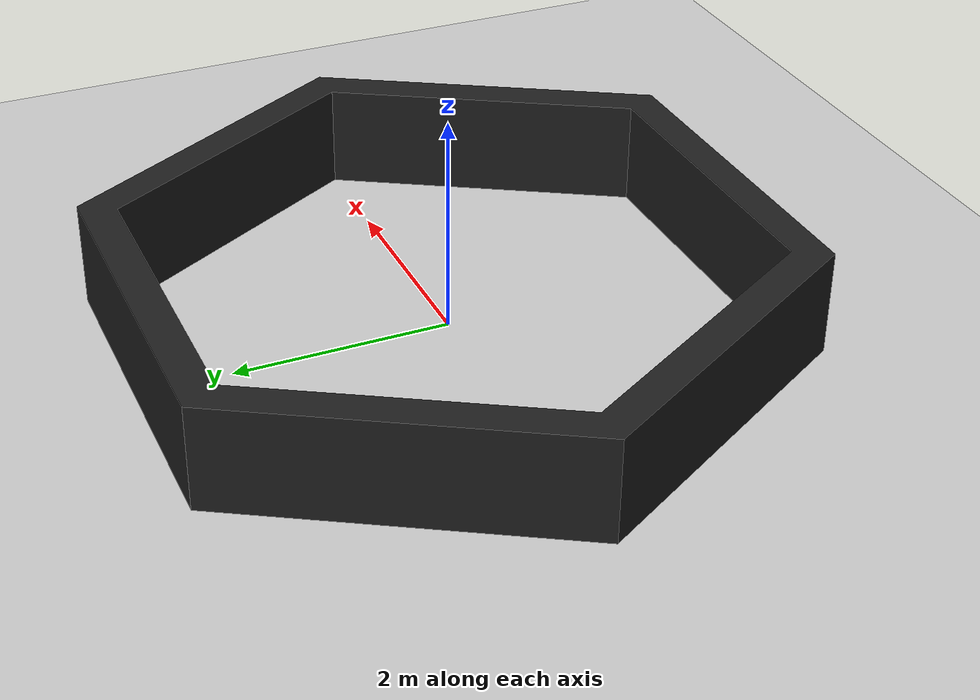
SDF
<?xml version="1.0"?>
<sdf version="1.6">
  <world name="default">

    <include>
      <uri>model://ground_plane</uri>
    </include>

    <include>
      <uri>model://sun</uri>
    </include>

    <scene>
      <shadows>false</shadows>
    </scene>

    <gui fullscreen='0'>
      <camera name='user_camera'>
        <pose frame=''>0.319654 -0.235002 9.29441 0 1.5138 0.009599</pose>
        <view_controller>orbit</view_controller>
        <projection_type>perspective</projection_type>
      </camera>
    </gui>

    <physics type="ode">
      <real_time_update_rate>1000.0</real_time_update_rate>
      <max_step_size>0.001</max_step_size>
      <real_time_factor>1</real_time_factor>
      <ode>
        <solver>
          <type>quick</type>
          <iters>150</iters>
          <precon_iters>0</precon_iters>
          <sor>1.400000</sor>
          <use_dynamic_moi_rescaling>1</use_dynamic_moi_rescaling>
        </solver>
        <constraints>
          <cfm>0.00001</cfm>
          <erp>0.2</erp>
          <contact_max_correcting_vel>2000.000000</contact_max_correcting_vel>
          <contact_surface_layer>0.01000</contact_surface_layer>
        </constraints>
      </ode>
    </physics>

    <model name="robit_intern_world">
      <static>1</static>
      <include>
        <uri>model://robit_intern_world</uri>
      </include>
    </model>

  </world>
</sdf>

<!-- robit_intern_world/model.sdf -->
<sdf version='1.5'>
    <model name='ros_symbol'>
      <static>1</static>
      <link name='symbol'>

        <!-- Draw Wall -->
        <collision name='body'>
        <pose>0 0 -0.3 0 0 -1.5708</pose>
        <geometry>
          <mesh>
            <uri>model://turtlebot3_world/meshes/wall.dae</uri>
            <scale>0.25 0.25 0.25</scale>
          </mesh>
        </geometry>
        <max_contacts>10</max_contacts>
        <surface>
          <bounce/>
          <friction>
            <ode/>
          </friction>
          <contact>
            <ode/>
          </contact>
        </surface>
      </collision>

      <visual name='body'>
        <pose>0 0 -0.3 0 0 -1.5708</pose>
        <geometry>
          <mesh>
            <uri>model://turtlebot3_world/meshes/wall.dae</uri>
            <scale>0.25 0.25 0.25</scale>
          </mesh>
        </geometry>
        <material>
          <script>
            <uri>file://media/materials/scripts/gazebo.material</uri>
            <name>Gazebo/FlatBlack</name>
          </script>
        </material>
      </visual>
    </link>
  </model>
</sdf>
